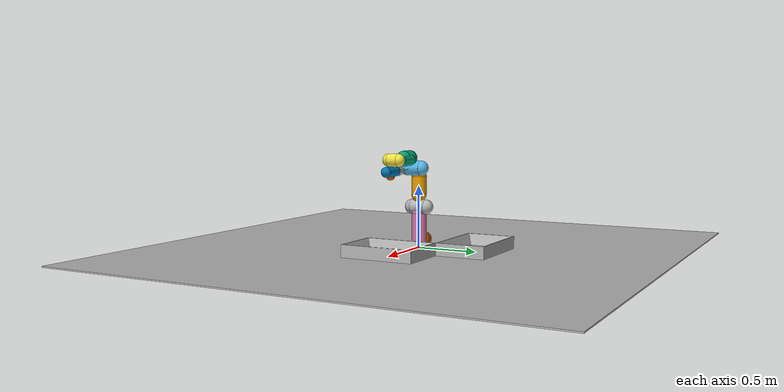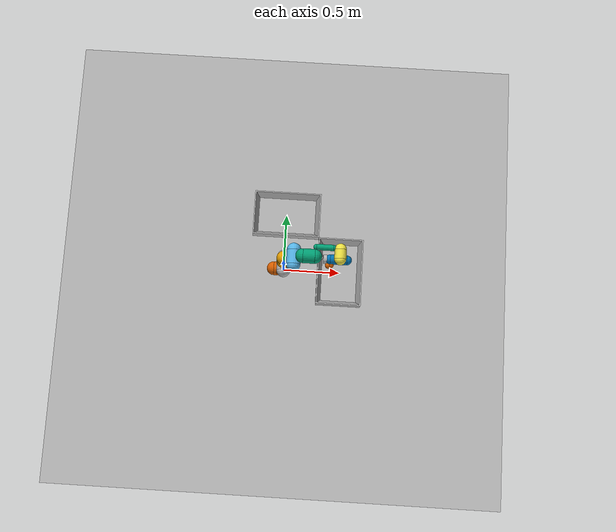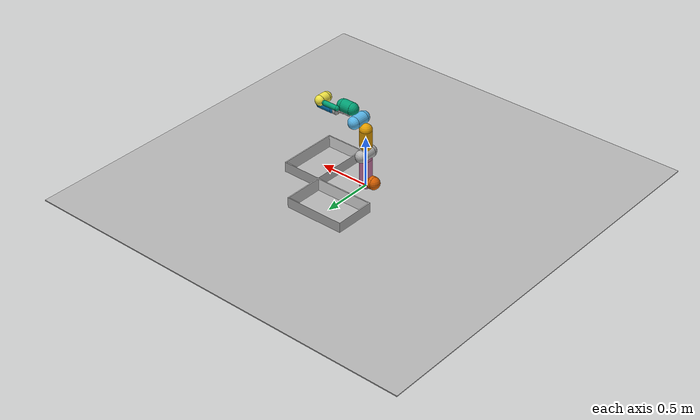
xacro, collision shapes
<?xml version="1.0" ?>
<robot name="rl_scene" xmlns:xacro="http://www.ros.org/wiki/xacro">

  <xacro:arg name="arm_id_1" default="panda_1" />

  <xacro:include filename="$(find rl_scene_description)/urdf/materials.xacro" />

  <xacro:include filename="$(find franka_description)/robots/panda_arm.xacro"/>

  <link name="base_link">
    <inertial>
      <origin rpy="0 0 0" xyz="0.0 -2.3283064365386967e-16 -0.005"/>
      <mass value="1256.0"/>
      <inertia ixx="1674.677133" ixy="-0.0" ixz="0.0" iyy="1674.677133" iyz="-0.0" izz="3349.333333"/>
    </inertial>
    <visual>
      <origin rpy="0 0 0" xyz="0 0 0"/>
      <geometry>
        <mesh filename="package://rl_scene_description/meshes/base_link.stl" scale="0.001 0.001 0.001"/>
      </geometry>
      <material name="silver"/>
    </visual>
    <collision>
      <origin rpy="0 0 0" xyz="0 0 0"/>
      <geometry>
        <mesh filename="package://rl_scene_description/meshes/base_link.stl" scale="0.001 0.001 0.001"/>
      </geometry>
    </collision>
  </link>

  <link name="link_box1_1">
    <inertial>
      <origin rpy="0 0 0" xyz="8.478324452852449e-17 0.0 0.03175959070611188"/>
      <mass value="53.89391980829295"/>
      <inertia ixx="1.185042" ixy="0.0" ixz="0.0" iyy="2.312279" iyz="-0.0" izz="3.413976"/>
    </inertial>
    <visual>
      <origin rpy="0 0 0" xyz="0.0 -0.5 -0.0"/>
      <geometry>
        <mesh filename="package://rl_scene_description/meshes/link_box1_1.stl" scale="0.001 0.001 0.001"/>
      </geometry>
      <material name="silver"/>
    </visual>
    <collision>
      <origin rpy="0 0 0" xyz="0.0 -0.5 -0.0"/>
      <geometry>
        <mesh filename="package://rl_scene_description/meshes/link_box1_1.stl" scale="0.001 0.001 0.001"/>
      </geometry>
    </collision>
  </link>

  <link name="link_box2_1">
    <inertial>
      <origin rpy="0 0 0" xyz="1.1102230246251565e-16 0.0 0.03175959070611188"/>
      <mass value="53.89391980829295"/>
      <inertia ixx="2.312279" ixy="0.0" ixz="0.0" iyy="1.185042" iyz="-0.0" izz="3.413976"/>
    </inertial>
    <visual>
      <origin rpy="0 0 0" xyz="-0.5 -0.0 -0.0"/>
      <geometry>
        <mesh filename="package://rl_scene_description/meshes/link_box2_1.stl" scale="0.001 0.001 0.001"/>
      </geometry>
      <material name="silver"/>
    </visual>
    <collision>
      <origin rpy="0 0 0" xyz="-0.5 -0.0 -0.0"/>
      <geometry>
        <mesh filename="package://rl_scene_description/meshes/link_box2_1.stl" scale="0.001 0.001 0.001"/>
      </geometry>
    </collision>
  </link>

  <!-- GRIPPER -->
  <link name="link_gripper">
    <visual>
      <origin rpy="0 0 0" xyz="-0.0 -0.0 -0.0"/>
      <geometry>
        <mesh filename="package://rl_scene_description/meshes/gripper.stl" scale="0.001 0.001 0.001"/>
      </geometry>
      <material name="silver"/>
    </visual>
    <collision>
      <origin rpy="0 0 0" xyz="-0.0 -0.0 -0.0"/>
      <geometry>
        <mesh filename="package://rl_scene_description/meshes/gripper.stl" scale="0.001 0.001 0.001"/>
      </geometry>
    </collision>
  </link>

  <link name="grasp_point">
    <visual>
      <origin rpy="0 0 0" xyz="0.0 0.0 0.0"/>
      <geometry>
        <box size="0.015 0.015 0.015"/>
      </geometry>
      <material name="red">
        <color rgba="0.8 0.0 0.0 0.5"/>
      </material>
    </visual>
  </link>

  <joint name="gripper_joint_1" type="fixed">
    <origin rpy="0 0 0" xyz="0.0 -0.0 0.173"/>
    <parent link="link_gripper"/>
    <child link="grasp_point"/>
  </joint>

  <joint name="box2_joint" type="fixed">
    <origin rpy="0 0 0" xyz="0.0 0.5 0.0"/>
    <parent link="base_link"/>
    <child link="link_box1_1"/>
  </joint>

  <joint name="box1_joint" type="fixed">
    <origin rpy="0 0 0" xyz="0.5 0.0 0.0"/>
    <parent link="base_link"/>
    <child link="link_box2_1"/>
  </joint>

  <!-- right arm with gripper -->
  <xacro:panda_arm arm_id="$(arg arm_id_1)" connected_to="base_link"  xyz="0.0 0.0 0.0" safety_distance="0"/>

  <joint name="grasp_point_joint" type="fixed">
    <origin rpy="0 0 0" xyz="0.0 0.0 0.0"/>
    <parent link="$(arg arm_id_1)_link8"/>
    <child link="link_gripper"/>
  </joint>

</robot>

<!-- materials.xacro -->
<robot name="rl_scene" xmlns:xacro="http://www.ros.org/wiki/xacro" >

<material name="silver">
  <color rgba="0.700 0.700 0.700 1.000"/>
</material>

</robot>

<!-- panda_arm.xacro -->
<robot xmlns:xacro="http://www.ros.org/wiki/xacro" name="panda">
  <!-- safety_distance: Minimum safety distance in [m] by which the collision volumes are expanded and which is enforced during robot motions -->
  <!-- arm_id: Namespace of the panda arm. Serves to differentiate between arms in case of multiple instances. -->
  <xacro:macro name="panda_arm" params="arm_id:='panda' description_pkg:='franka_description' connected_to:='' xyz:='0 0 0' rpy:='0 0 0' safety_distance:=0">
    <xacro:unless value="${not connected_to}">
      <joint name="${arm_id}_joint_${connected_to}" type="fixed">
        <parent link="${connected_to}"/>
        <child link="${arm_id}_link0"/>
        <origin rpy="${rpy}" xyz="${xyz}"/>
      </joint>
    </xacro:unless>
    <link name="${arm_id}_link0">
      <visual>
        <geometry>
          <mesh filename="package://${description_pkg}/meshes/visual/link0.dae"/>
        </geometry>
      </visual>
      <collision>
        <origin xyz="-0.075 0 0.06" rpy="0 ${pi/2} 0"/>
        <geometry>
          <cylinder radius="${0.06+safety_distance}" length="0.03" />
        </geometry>
      </collision>
      <collision>
        <origin xyz="-0.06 0 0.06" rpy="0 0 0"/>
        <geometry>
          <sphere radius="${0.06+safety_distance}" />
        </geometry>
      </collision>
      <collision>
        <origin xyz="-0.09 0 0.06" rpy="0 0 0"/>
        <geometry>
          <sphere radius="${0.06+safety_distance}" />
        </geometry>
      </collision>
    </link>
    <link name="${arm_id}_link1">
      <visual>
        <geometry>
          <mesh filename="package://${description_pkg}/meshes/visual/link1.dae"/>
        </geometry>
      </visual>
      <collision>
        <origin xyz="0 0 -0.1915" rpy="0 0 0"/>
        <geometry>
          <cylinder radius="${0.06+safety_distance}" length="0.2830" />
        </geometry>
      </collision>
      <collision>
        <origin xyz="0 0 -0.333" rpy="0 0 0"/>
        <geometry>
          <sphere radius="${0.06+safety_distance}" />
        </geometry>
      </collision>
      <collision>
        <origin xyz="0 0 -0.05" rpy="0 0 0"/>
        <geometry>
          <sphere radius="${0.06+safety_distance}" />
        </geometry>
      </collision>
    </link>
    <joint name="${arm_id}_joint1" type="revolute">
      <safety_controller k_position="100.0" k_velocity="40.0" soft_lower_limit="-2.8973" soft_upper_limit="2.8973"/>
      <origin rpy="0 0 0" xyz="0 0 0.333"/>
      <parent link="${arm_id}_link0"/>
      <child link="${arm_id}_link1"/>
      <axis xyz="0 0 1"/>
      <limit effort="87" lower="-2.8973" upper="2.8973" velocity="2.1750"/>
    </joint>
    <link name="${arm_id}_link2">
      <visual>
        <geometry>
          <mesh filename="package://${description_pkg}/meshes/visual/link2.dae"/>
        </geometry>
      </visual>
      <collision>
        <origin xyz="0 0 0" rpy="0 0 0"/>
        <geometry>
          <cylinder radius="${0.06+safety_distance}" length="0.12" />
        </geometry>
      </collision>
      <collision>
        <origin xyz="0 0 -0.06" rpy="0 0 0"/>
        <geometry>
          <sphere radius="${0.06+safety_distance}" />
        </geometry>
      </collision>
      <collision>
        <origin xyz="0 0 0.06" rpy="0 0 0"/>
        <geometry>
          <sphere radius="${0.06+safety_distance}" />
        </geometry>
      </collision>
    </link>
    <joint name="${arm_id}_joint2" type="revolute">
      <safety_controller k_position="100.0" k_velocity="40.0" soft_lower_limit="-1.7628" soft_upper_limit="1.7628"/>
      <origin rpy="${-pi/2} 0 0" xyz="0 0 0"/>
      <parent link="${arm_id}_link1"/>
      <child link="${arm_id}_link2"/>
      <axis xyz="0 0 1"/>
      <limit effort="87" lower="-1.7628" upper="1.7628" velocity="2.1750"/>
    </joint>
    <link name="${arm_id}_link3">
      <visual>
        <geometry>
          <mesh filename="package://${description_pkg}/meshes/visual/link3.dae"/>
        </geometry>
      </visual>
      <collision>
        <origin xyz="0 0 -0.145" rpy="0 0 0"/>
        <geometry>
          <cylinder radius="${0.06+safety_distance}" length="0.15" />
        </geometry>
      </collision>
      <collision>
        <origin xyz="0 0 -0.22" rpy="0 0 0"/>
        <geometry>
          <sphere radius="${0.06+safety_distance}" />
        </geometry>
      </collision>
      <collision>
        <origin xyz="0 0 -0.07" rpy="0 0 0"/>
        <geometry>
          <sphere radius="${0.06+safety_distance}" />
        </geometry>
      </collision>
    </link>
    <joint name="${arm_id}_joint3" type="revolute">
      <safety_controller k_position="100.0" k_velocity="40.0" soft_lower_limit="-2.8973" soft_upper_limit="2.8973"/>
      <origin rpy="${pi/2} 0 0" xyz="0 -0.316 0"/>
      <parent link="${arm_id}_link2"/>
      <child link="${arm_id}_link3"/>
      <axis xyz="0 0 1"/>
      <limit effort="87" lower="-2.8973" upper="2.8973" velocity="2.1750"/>
    </joint>
    <link name="${arm_id}_link4">
      <visual>
        <geometry>
          <mesh filename="package://${description_pkg}/meshes/visual/link4.dae"/>
        </geometry>
      </visual>
      <collision>
        <origin xyz="0 0 0" rpy="0 0 0"/>
        <geometry>
          <cylinder radius="${0.06+safety_distance}" length="0.12" />
        </geometry>
      </collision>
      <collision>
        <origin xyz="0 0 0.06" rpy="0 0 0"/>
        <geometry>
          <sphere radius="${0.06+safety_distance}" />
        </geometry>
      </collision>
      <collision>
        <origin xyz="0 0 -0.06" rpy="0 0 0"/>
        <geometry>
          <sphere radius="${0.06+safety_distance}" />
        </geometry>
      </collision>
    </link>
    <joint name="${arm_id}_joint4" type="revolute">
      <safety_controller k_position="100.0" k_velocity="40.0" soft_lower_limit="-3.0718" soft_upper_limit="-0.0698"/>
      <origin rpy="${pi/2} 0 0" xyz="0.0825 0 0"/>
      <parent link="${arm_id}_link3"/>
      <child link="${arm_id}_link4"/>
      <axis xyz="0 0 1"/>
      <limit effort="87" lower="-3.0718" upper="-0.0698" velocity="2.1750"/>
    </joint>
    <link name="${arm_id}_link5">
      <visual>
        <geometry>
          <mesh filename="package://${description_pkg}/meshes/visual/link5.dae"/>
        </geometry>
      </visual>
      <collision>
        <origin xyz="0 0 -0.26" rpy="0 0 0"/>
        <geometry>
          <cylinder radius="${0.06+safety_distance}" length="0.1" />
        </geometry>
      </collision>
      <collision>
        <origin xyz="0 0 -0.31" rpy="0 0 0"/>
        <geometry>
          <sphere radius="${0.06+safety_distance}" />
        </geometry>
      </collision>
      <collision>
        <origin xyz="0 0 -0.21" rpy="0 0 0"/>
        <geometry>
          <sphere radius="${0.06+safety_distance}" />
        </geometry>
      </collision>
      <collision>
        <origin xyz="0 0.08 -0.13" rpy="0 0 0"/>
        <geometry>
          <cylinder radius="${0.025+safety_distance}" length="0.14" />
        </geometry>
      </collision>
      <collision>
        <origin xyz="0 0.08 -0.06" rpy="0 0 0"/>
        <geometry>
          <sphere radius="${0.025+safety_distance}" />
        </geometry>
      </collision>
      <collision>
        <origin xyz="0 0.08 -0.20" rpy="0 0 0"/>
        <geometry>
          <sphere radius="${0.025+safety_distance}" />
        </geometry>
      </collision>

    </link>
    <joint name="${arm_id}_joint5" type="revolute">
      <safety_controller k_position="100.0" k_velocity="40.0" soft_lower_limit="-2.8973" soft_upper_limit="2.8973"/>
      <origin rpy="${-pi/2} 0 0" xyz="-0.0825 0.384 0"/>
      <parent link="${arm_id}_link4"/>
      <child link="${arm_id}_link5"/>
      <axis xyz="0 0 1"/>
      <limit effort="12" lower="-2.8973" upper="2.8973" velocity="2.6100"/>
    </joint>
    <link name="${arm_id}_link6">
      <visual>
        <geometry>
          <mesh filename="package://${description_pkg}/meshes/visual/link6.dae"/>
        </geometry>
      </visual>
      <collision>
        <origin xyz="0 0 -0.03" rpy="0 0 0"/>
        <geometry>
          <cylinder radius="${0.05+safety_distance}" length="0.08" />
        </geometry>
      </collision>
      <collision>
        <origin xyz="0 0 0.01" rpy="0 0 0"/>
        <geometry>
          <sphere radius="${0.05+safety_distance}" />
        </geometry>
      </collision>
      <collision>
        <origin xyz="0 0 -0.07" rpy="0 0 0"/>
        <geometry>
          <sphere radius="${0.05+safety_distance}" />
        </geometry>
      </collision>
    </link>
    <joint name="${arm_id}_joint6" type="revolute">
      <safety_controller k_position="100.0" k_velocity="40.0" soft_lower_limit="-0.0175" soft_upper_limit="3.7525"/>
      <origin rpy="${pi/2} 0 0" xyz="0 0 0"/>
      <parent link="${arm_id}_link5"/>
      <child link="${arm_id}_link6"/>
      <axis xyz="0 0 1"/>
      <limit effort="12" lower="-0.0175" upper="3.7525" velocity="2.6100"/>
    </joint>
    <link name="${arm_id}_link7">
      <visual>
        <geometry>
          <mesh filename="package://${description_pkg}/meshes/visual/link7.dae"/>
        </geometry>
      </visual>
      <collision>
        <origin xyz="0 0 0.01" rpy="0 0 0"/>
        <geometry>
          <cylinder radius="${0.04+safety_distance}" length="0.14" />
        </geometry>
      </collision>
      <collision>
        <origin xyz="0 0 0.08" rpy="0 0 0"/>
        <geometry>
          <sphere radius="${0.04+safety_distance}"  />
        </geometry>
      </collision>
      <collision>
        <origin xyz="0 0 -0.06" rpy="0 0 0"/>
        <geometry>
          <sphere radius="${0.04+safety_distance}"  />
        </geometry>
      </collision>
    </link>
    <joint name="${arm_id}_joint7" type="revolute">
      <safety_controller k_position="100.0" k_velocity="40.0" soft_lower_limit="-2.8973" soft_upper_limit="2.8973"/>
      <origin rpy="${pi/2} 0 0" xyz="0.088 0 0"/>
      <parent link="${arm_id}_link6"/>
      <child link="${arm_id}_link7"/>
      <axis xyz="0 0 1"/>
      <limit effort="12" lower="-2.8973" upper="2.8973" velocity="2.6100"/>
    </joint>
    <link name="${arm_id}_link8">
      <collision>
        <origin xyz="0.0424 0.0424 -0.0250" rpy="${pi} ${pi/2} ${pi/2}"/>
        <geometry>
          <cylinder radius="${0.03+safety_distance}"  length="0.01" />
        </geometry>
      </collision>
      <collision>
        <origin xyz="0.0424 0.0424 -0.02" rpy="0 0 0"/>
        <geometry>
          <sphere radius="${0.03+safety_distance}"  />
        </geometry>
      </collision>
      <collision>
        <origin xyz="0.0424 0.0424 -0.03" rpy="0 0 0"/>
        <geometry>
          <sphere radius="${0.03+safety_distance}"  />
        </geometry>
      </collision>
    </link>
    <joint name="${arm_id}_joint8" type="fixed">
      <origin rpy="0 0 0" xyz="0 0 0.107"/>
      <parent link="${arm_id}_link7"/>
      <child link="${arm_id}_link8"/>
    </joint>
  </xacro:macro>
</robot>
